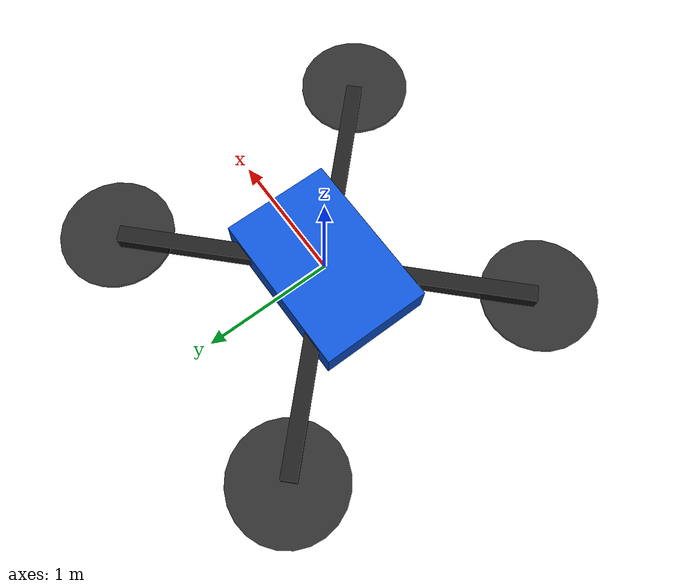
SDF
<?xml version="1.0"?>
<sdf version="1.8">
  <model name="fleet_uav_blue">
    <static>true</static>
    <link name="base_link">
      <visual name="body">
        <pose>0 0 0 0 0 0</pose>
        <geometry>
          <box>
            <size>1.25 0.85 0.26</size>
          </box>
        </geometry>
        <material>
          <ambient>0.04 0.12 0.24 1</ambient>
          <diffuse>0.05 0.32 0.82 1</diffuse>
        </material>
      </visual>
      <visual name="arm_x">
        <pose>0 0 0.02 0 0 0.785</pose>
        <geometry>
          <box>
            <size>3.1 0.12 0.12</size>
          </box>
        </geometry>
        <material>
          <ambient>0.08 0.08 0.08 1</ambient>
          <diffuse>0.12 0.12 0.12 1</diffuse>
        </material>
      </visual>
      <visual name="arm_y">
        <pose>0 0 0.02 0 0 -0.785</pose>
        <geometry>
          <box>
            <size>3.1 0.12 0.12</size>
          </box>
        </geometry>
        <material>
          <ambient>0.08 0.08 0.08 1</ambient>
          <diffuse>0.12 0.12 0.12 1</diffuse>
        </material>
      </visual>
      <visual name="rotor_front_left">
        <pose>1.1 1.1 0.06 0 0 0</pose>
        <geometry>
          <cylinder>
            <radius>0.42</radius>
            <length>0.035</length>
          </cylinder>
        </geometry>
        <material>
          <ambient>0.02 0.02 0.02 0.8</ambient>
          <diffuse>0.03 0.03 0.03 0.8</diffuse>
        </material>
      </visual>
      <visual name="rotor_front_right">
        <pose>1.1 -1.1 0.06 0 0 0</pose>
        <geometry>
          <cylinder>
            <radius>0.42</radius>
            <length>0.035</length>
          </cylinder>
        </geometry>
        <material>
          <ambient>0.02 0.02 0.02 0.8</ambient>
          <diffuse>0.03 0.03 0.03 0.8</diffuse>
        </material>
      </visual>
      <visual name="rotor_back_left">
        <pose>-1.1 1.1 0.06 0 0 0</pose>
        <geometry>
          <cylinder>
            <radius>0.42</radius>
            <length>0.035</length>
          </cylinder>
        </geometry>
        <material>
          <ambient>0.02 0.02 0.02 0.8</ambient>
          <diffuse>0.03 0.03 0.03 0.8</diffuse>
        </material>
      </visual>
      <visual name="rotor_back_right">
        <pose>-1.1 -1.1 0.06 0 0 0</pose>
        <geometry>
          <cylinder>
            <radius>0.42</radius>
            <length>0.035</length>
          </cylinder>
        </geometry>
        <material>
          <ambient>0.02 0.02 0.02 0.8</ambient>
          <diffuse>0.03 0.03 0.03 0.8</diffuse>
        </material>
      </visual>
      <visual name="camera">
        <pose>0.35 0 -0.22 0 0 0</pose>
        <geometry>
          <box>
            <size>0.25 0.25 0.22</size>
          </box>
        </geometry>
        <material>
          <ambient>0.0 0.0 0.0 1</ambient>
          <diffuse>0.02 0.02 0.02 1</diffuse>
        </material>
      </visual>
    </link>
  </model>
</sdf>
